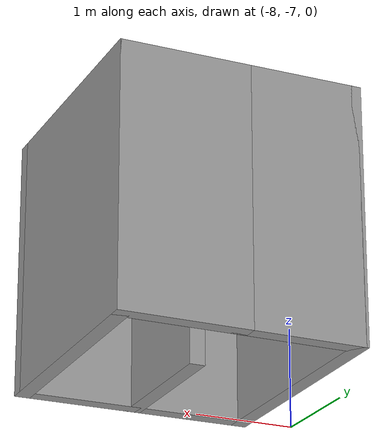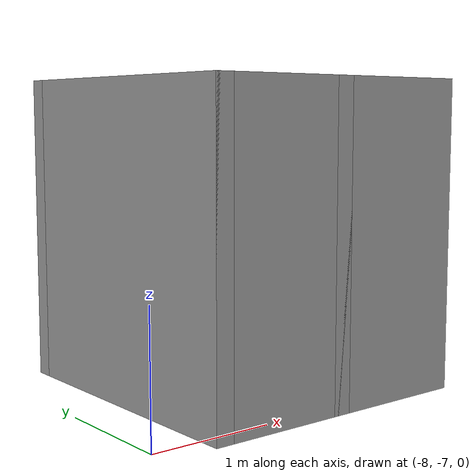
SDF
<?xml version='1.0'?>
<sdf version='1.7'>
  <model name='level1'>
    <pose>-3.79754 -3.58986 0 0 -0 0</pose>
    <link name='Wall_28'>
      <collision name='Wall_28_Collision'>
        <geometry>
          <box>
            <size>2.5 0.15 2.5</size>
          </box>
        </geometry>
        <pose>0 0 1.25 0 -0 0</pose>
      </collision>
      <visual name='Wall_28_Visual'>
        <pose>0 0 1.25 0 -0 0</pose>
        <geometry>
          <box>
            <size>2.5 0.15 2.5</size>
          </box>
        </geometry>
        <material>
          <script>
            <uri>file://media/materials/scripts/gazebo.material</uri>
            <name>Gazebo/Grey</name>
          </script>
          <ambient>1 1 1 1</ambient>
        </material>
        <meta>
          <layer>0</layer>
        </meta>
      </visual>
      <pose>-3.72254 -2.33986 0 0 -0 -1.5708</pose>
    </link>
    <link name='Wall_29'>
      <collision name='Wall_29_Collision'>
        <geometry>
          <box>
            <size>1.25 0.15 2.5</size>
          </box>
        </geometry>
        <pose>0 0 1.25 0 -0 0</pose>
      </collision>
      <visual name='Wall_29_Visual'>
        <pose>0 0 1.25 0 -0 0</pose>
        <geometry>
          <box>
            <size>1.25 0.15 2.5</size>
          </box>
        </geometry>
        <material>
          <script>
            <uri>file://media/materials/scripts/gazebo.material</uri>
            <name>Gazebo/Grey</name>
          </script>
          <ambient>1 1 1 1</ambient>
        </material>
        <meta>
          <layer>0</layer>
        </meta>
      </visual>
      <pose>-3.17254 -3.51486 0 0 -0 0</pose>
    </link>
    <link name='Wall_30'>
      <collision name='Wall_30_Collision'>
        <geometry>
          <box>
            <size>1.5 0.15 2.5</size>
          </box>
        </geometry>
        <pose>0 0 1.25 0 -0 0</pose>
      </collision>
      <visual name='Wall_30_Visual'>
        <pose>0 0 1.25 0 -0 0</pose>
        <geometry>
          <box>
            <size>1.5 0.15 2.5</size>
          </box>
        </geometry>
        <material>
          <script>
            <uri>file://media/materials/scripts/gazebo.material</uri>
            <name>Gazebo/Grey</name>
          </script>
          <ambient>1 1 1 1</ambient>
        </material>
        <meta>
          <layer>0</layer>
        </meta>
      </visual>
      <pose>-2.62254 -2.83986 0 0 -0 1.5708</pose>
    </link>
    <link name='Wall_32'>
      <collision name='Wall_32_Collision'>
        <geometry>
          <box>
            <size>1.25 0.15 2.5</size>
          </box>
        </geometry>
        <pose>0 0 1.25 0 -0 0</pose>
      </collision>
      <visual name='Wall_32_Visual'>
        <pose>0 0 1.25 0 -0 0</pose>
        <geometry>
          <box>
            <size>1.25 0.15 2.5</size>
          </box>
        </geometry>
        <material>
          <script>
            <uri>file://media/materials/scripts/gazebo.material</uri>
            <name>Gazebo/Grey</name>
          </script>
          <ambient>1 1 1 1</ambient>
        </material>
        <meta>
          <layer>0</layer>
        </meta>
      </visual>
      <pose>-3.17254 -1.16486 0 0 -0 0</pose>
    </link>
    <link name='Wall_33'>
      <collision name='Wall_33_Collision'>
        <geometry>
          <box>
            <size>1.25 0.15 2.5</size>
          </box>
        </geometry>
        <pose>0 0 1.25 0 -0 0</pose>
      </collision>
      <visual name='Wall_33_Visual'>
        <pose>0 0 1.25 0 -0 0</pose>
        <geometry>
          <box>
            <size>1.25 0.15 2.5</size>
          </box>
        </geometry>
        <material>
          <script>
            <uri>file://media/materials/scripts/gazebo.material</uri>
            <name>Gazebo/Grey</name>
          </script>
          <ambient>1 1 1 1</ambient>
        </material>
        <meta>
          <layer>0</layer>
        </meta>
      </visual>
      <pose>-2.07254 -1.16486 0 0 -0 0</pose>
    </link>
    <link name='Wall_34'>
      <collision name='Wall_34_Collision'>
        <geometry>
          <box>
            <size>2.5 0.15 2.5</size>
          </box>
        </geometry>
        <pose>0 0 1.25 0 -0 0</pose>
      </collision>
      <visual name='Wall_34_Visual'>
        <pose>0 0 1.25 0 -0 0</pose>
        <geometry>
          <box>
            <size>2.5 0.15 2.5</size>
          </box>
        </geometry>
        <material>
          <script>
            <uri>file://media/materials/scripts/gazebo.material</uri>
            <name>Gazebo/Grey</name>
          </script>
          <ambient>1 1 1 1</ambient>
        </material>
        <meta>
          <layer>0</layer>
        </meta>
      </visual>
      <pose>-1.52254 -2.33986 0 0 -0 -1.5708</pose>
    </link>
    <link name='Wall_35'>
      <collision name='Wall_35_Collision'>
        <geometry>
          <box>
            <size>1.25 0.15 2.5</size>
          </box>
        </geometry>
        <pose>0 0 1.25 0 -0 0</pose>
      </collision>
      <visual name='Wall_35_Visual'>
        <pose>0 0 1.25 0 -0 0</pose>
        <geometry>
          <box>
            <size>1.25 0.15 2.5</size>
          </box>
        </geometry>
        <material>
          <script>
            <uri>file://media/materials/scripts/gazebo.material</uri>
            <name>Gazebo/Grey</name>
          </script>
          <ambient>1 1 1 1</ambient>
        </material>
        <meta>
          <layer>0</layer>
        </meta>
      </visual>
      <pose>-2.07254 -3.51486 0 0 -0 3.14159</pose>
    </link>
    <static>1</static>
  </model>
</sdf>
